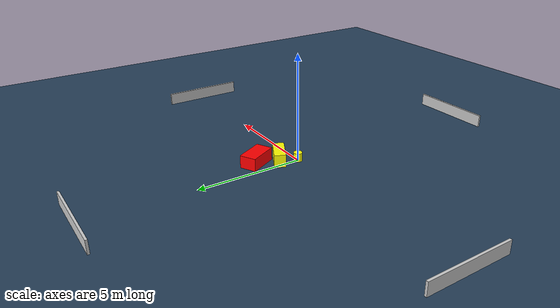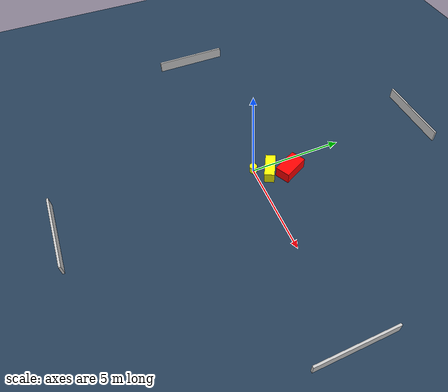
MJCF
<?xml version="1.0" ?>
<mujoco model="generated_environment">
  <option timestep="0.01" integrator="RK4" cone="elliptic"/>
  <default>
    <geom density="1"/>
  </default>
  <asset>
    <texture builtin="gradient" height="3072" name="skybox" rgb1="0.3 0.5 0.7" rgb2="0 0 0" type="skybox" width="512"/>
    <texture builtin="checker" height="300" name="groundplane" rgb1="0.2 0.3 0.4" rgb2="0.1 0.2 0.3" type="2d" width="300"/>
    <material name="groundplane" reflectance="0.2" texrepeat="5 5" texture="groundplane"/>
  </asset>
  <worldbody>
    <light dir="0 0 -1" directional="true" pos="0 0 1.5"/>
    <geom condim="3" friction="0.5 0.005 0.001" material="groundplane" name="floor" pos="0 0 0" size="0 0 0.05" type="plane"/>
    <body name="walls">
      <geom name="wall_1" condim="4" pos="-10.0 0.0 0.3" rgba="0.800000011920929 0.800000011920929 0.800000011920929 1.0" size="0.05 2.0 0.3" type="box"/>
      <geom name="wall_2" condim="4" pos="10.0 0.0 0.3" rgba="0.800000011920929 0.800000011920929 0.800000011920929 1.0" size="0.05 2.0 0.3" type="box"/>
      <geom name="wall_3" condim="4" pos="0.0 -10.0 0.3" rgba="0.800000011920929 0.800000011920929 0.800000011920929 1.0" size="2.0 0.05 0.3" type="box"/>
      <geom name="wall_4" condim="4" pos="0.0 10.0 0.3" rgba="0.800000011920929 0.800000011920929 0.800000011920929 1.0" size="2.0 0.05 0.3" type="box"/>
    </body>
    <body name="robot">
      <joint name="joint_x" type="slide" pos="0 0 0" axis="1 0 0"/>
      <joint name="joint_y" type="slide" pos="0 0 0" axis="0 1 0"/>
      <geom name="robot" type="cylinder" pos="0.0 0.0 0.2" size="0.2 0.2 0.0" mass="5.0" friction="1.0 0.005 0.0001" condim="4" rgba="1.0 1.0 0.0 1.0"/>
    </body>
    <body name="obstacle_1_movable">
      <geom name="obstacle_1_movable" condim="4" pos="0.4250345147886553 0.753226281540051 0.3" euler="0 0 151.87569854297345" friction="0.0 0.005 0.001" rgba="1.0 1.0 0.0 1.0" size="0.6628479108406289 0.2650326181966941 0.3" type="box" mass="0.1"/>
      <joint type="free"/>
    </body>
    <body name="obstacle_2_static">
      <geom name="obstacle_2_static" condim="4" pos="0.7724294722052624 1.752015334453662 0.3" euler="0 0 297.1242784549084" friction="0.0 0.005 0.001" rgba="1.0 0.0 0.0 1.0" size="0.6986839353852046 0.39418903870499816 0.3" type="box"/>
    </body>
  </worldbody>
  <actuator>
    <motor name="actuator_x" joint="joint_x" gear="1" ctrlrange="-1 1"/>
    <motor name="actuator_y" joint="joint_y" gear="1" ctrlrange="-1 1"/>
  </actuator>
</mujoco>
